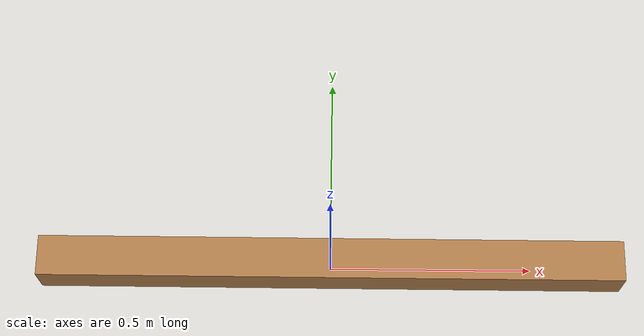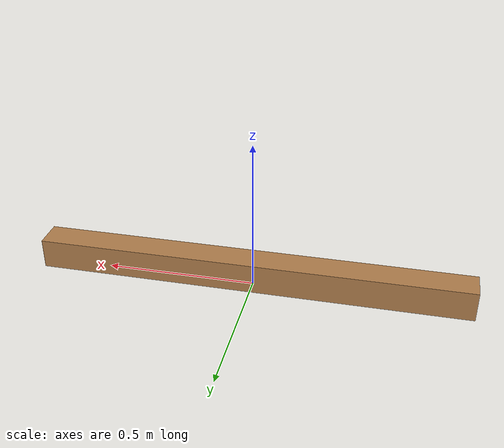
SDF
<?xml version="1.0" ?>

<sdf version="1.5">
  <model name="wood_block_144_10_10cm">
    <link name="link">
      <pose>0 0 0.05 0 0 0</pose>

      <inertial>
        <mass>1000</mass>
      </inertial>

      <collision name="collision">
        <geometry>
          <box>
            <size>1.44 0.1 0.1</size>
          </box>
        </geometry>
        <surface>
          <contact>
            <!-- Red Pine coefficients for longitudinal axis of the wood
                 according to:
                 http://www.fpl.fs.fed.us/documnts/fplgtr/fplgtr113/ch04.pdf -->

            <poissons_ratio>0.347</poissons_ratio>
            <elastic_modulus>8.8e+09</elastic_modulus>
            <ode>
              <kp>100000</kp>
              <kd>1</kd>
              <max_vel>1.0</max_vel>
              <min_depth>0.001</min_depth>
            </ode>
          </contact>
          <friction>
            <torsional>
              <coefficient>1.0</coefficient>
              <use_patch_radius>0</use_patch_radius>
              <surface_radius>0.05</surface_radius>
            </torsional>
          </friction>
        </surface>
      </collision>

      <visual name="visual">
        <geometry>
          <box>
            <size>1.44 0.1 0.1</size>
          </box>
        </geometry>
        <material>
          <script>
            <uri>file://media/materials/scripts/gazebo.material</uri>
            <name>Gazebo/Wood</name>
          </script>
        </material>
      </visual>

    </link>
  </model>
</sdf>
